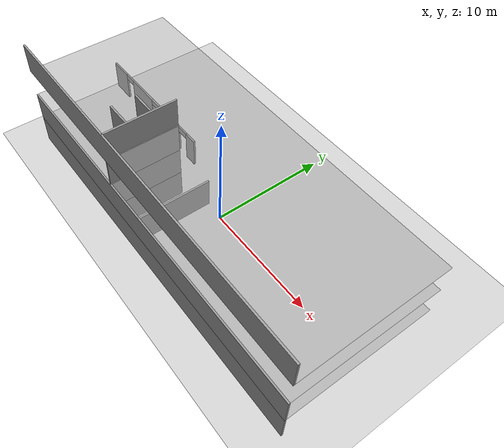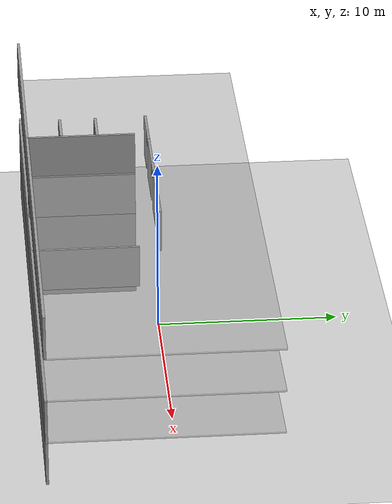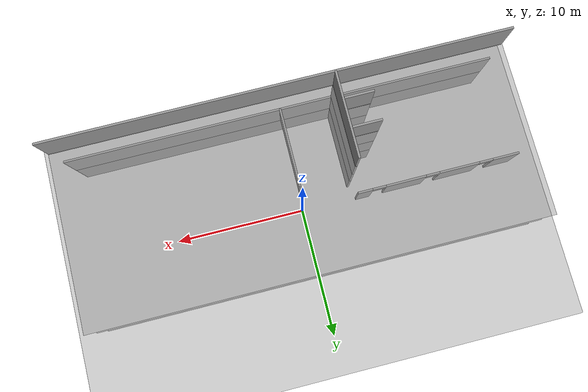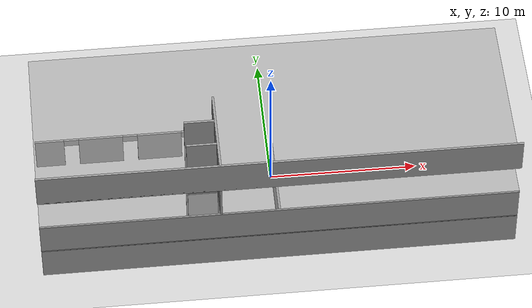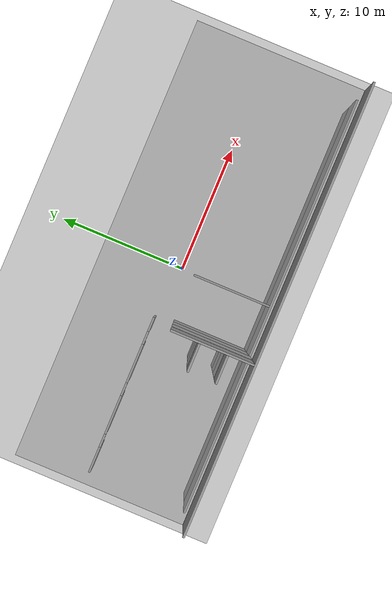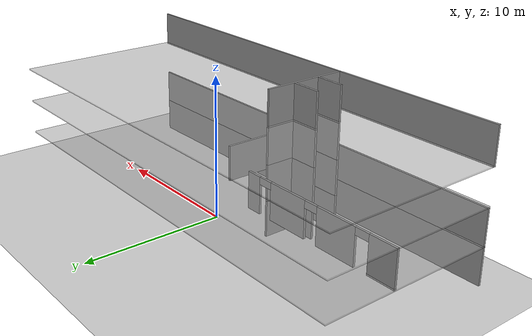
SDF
<sdf version="1.7">
 <world name="default">
  <model name="ground_plane">
   <static>1</static>
   <link name="link">
    <collision name="collision">
     <geometry><plane><normal>0 0 1</normal><size>100 100</size></plane></geometry>
     <surface>
      <contact><collide_bitmask>65535</collide_bitmask></contact>
      <friction><ode><mu>100</mu><mu2>50</mu2></ode></friction>
     </surface>
    </collision>
    <visual name="visual">
     <cast_shadows>0</cast_shadows>
     <geometry><plane><normal>0 0 1</normal><size>100 100</size></plane></geometry>
     <material>
      <script><uri>file://media/materials/scripts/gazebo.material</uri><name>Gazebo/Grey</name></script>
     </material>
    </visual>
   </link>
  </model>
  <model name="floor4plan_transp">
   <link name="Floor_0">
    <pose>0 0 2.5 0 -0 0</pose>
    <inertial>
     <mass>1</mass>
     <inertia><ixx>1</ixx><ixy>0</ixy><ixz>0</ixz><iyy>1</iyy><iyz>0</iyz><izz>1</izz></inertia>
    </inertial>
    <visual name="Floor_0_Visual">
     <pose>0 0 0.05 0 -0 0</pose>
     <geometry><box><size>32 12.5 0.1</size></box></geometry>
     <material>
      <script><uri>file://media/materials/scripts/gazebo.material</uri><name>Gazebo/Grey</name></script>
      <ambient>1 1 1 1</ambient>
      <shader type="pixel"><normal_map>__default__</normal_map></shader>
      <diffuse>0.7 0.7 0.7 1</diffuse>
      <specular>0.01 0.01 0.01 1</specular>
      <emissive>0 0 0 1</emissive>
     </material>
     <meta><layer>1</layer></meta>
     <transparency>0.5</transparency>
    </visual>
    <collision name="Floor_0_Collision">
     <pose>0 0 0.05 0 -0 0</pose>
     <geometry><box><size>32 12.5 0.1</size></box></geometry>
     <surface>
      <friction>
       <ode><mu>1</mu><mu2>1</mu2><fdir1>0 0 0</fdir1><slip1>0</slip1><slip2>0</slip2></ode>
       <torsional>
        <coefficient>1</coefficient>
        <patch_radius>0</patch_radius>
        <surface_radius>0</surface_radius>
        <use_patch_radius>1</use_patch_radius>
        <ode><slip>0</slip></ode>
       </torsional>
      </friction>
      <bounce><restitution_coefficient>0</restitution_coefficient><threshold>1e+06</threshold></bounce>
      <contact>
       <collide_without_contact>0</collide_without_contact>
       <collide_without_contact_bitmask>1</collide_without_contact_bitmask>
       <collide_bitmask>1</collide_bitmask>
       <ode>
        <soft_cfm>0</soft_cfm>
        <soft_erp>0.2</soft_erp>
        <kp>1e+13</kp>
        <kd>1</kd>
        <max_vel>0.01</max_vel>
        <min_depth>0</min_depth>
       </ode>
       <bullet>
        <split_impulse>1</split_impulse>
        <split_impulse_penetration_threshold>-0.01</split_impulse_penetration_threshold>
        <soft_cfm>0</soft_cfm>
        <soft_erp>0.2</soft_erp>
        <kp>1e+13</kp>
        <kd>1</kd>
       </bullet>
      </contact>
     </surface>
    </collision>
   </link>
   <link name="Floor_1">
    <pose>0 0 5 0 -0 0</pose>
    <inertial>
     <mass>1</mass>
     <inertia><ixx>1</ixx><ixy>0</ixy><ixz>0</ixz><iyy>1</iyy><iyz>0</iyz><izz>1</izz></inertia>
    </inertial>
    <visual name="Floor_1_Visual">
     <pose>0 0 0.05 0 -0 0</pose>
     <geometry><box><size>32 12.5 0.1</size></box></geometry>
     <material>
      <script><uri>file://media/materials/scripts/gazebo.material</uri><name>Gazebo/Grey</name></script>
      <ambient>1 1 1 1</ambient>
      <shader type="pixel"><normal_map>__default__</normal_map></shader>
      <diffuse>0.7 0.7 0.7 1</diffuse>
      <specular>0.01 0.01 0.01 1</specular>
      <emissive>0 0 0 1</emissive>
     </material>
     <meta><layer>2</layer></meta>
     <transparency>0.5</transparency>
    </visual>
    <collision name="Floor_1_Collision">
     <pose>0 0 0.05 0 -0 0</pose>
     <geometry><box><size>32 12.5 0.1</size></box></geometry>
     <surface>
      <friction>
       <ode><mu>1</mu><mu2>1</mu2><fdir1>0 0 0</fdir1><slip1>0</slip1><slip2>0</slip2></ode>
       <torsional>
        <coefficient>1</coefficient>
        <patch_radius>0</patch_radius>
        <surface_radius>0</surface_radius>
        <use_patch_radius>1</use_patch_radius>
        <ode><slip>0</slip></ode>
       </torsional>
      </friction>
      <bounce><restitution_coefficient>0</restitution_coefficient><threshold>1e+06</threshold></bounce>
      <contact>
       <collide_without_contact>0</collide_without_contact>
       <collide_without_contact_bitmask>1</collide_without_contact_bitmask>
       <collide_bitmask>1</collide_bitmask>
       <ode>
        <soft_cfm>0</soft_cfm>
        <soft_erp>0.2</soft_erp>
        <kp>1e+13</kp>
        <kd>1</kd>
        <max_vel>0.01</max_vel>
        <min_depth>0</min_depth>
       </ode>
       <bullet>
        <split_impulse>1</split_impulse>
        <split_impulse_penetration_threshold>-0.01</split_impulse_penetration_threshold>
        <soft_cfm>0</soft_cfm>
        <soft_erp>0.2</soft_erp>
        <kp>1e+13</kp>
        <kd>1</kd>
       </bullet>
      </contact>
     </surface>
    </collision>
   </link>
   <link name="Floor_2">
    <pose>0 0 7.5 0 -0 0</pose>
    <inertial>
     <mass>1</mass>
     <inertia><ixx>1</ixx><ixy>0</ixy><ixz>0</ixz><iyy>1</iyy><iyz>0</iyz><izz>1</izz></inertia>
    </inertial>
    <visual name="Floor_2_Visual">
     <pose>0 0 0.05 0 -0 0</pose>
     <geometry><box><size>32 12.5 0.1</size></box></geometry>
     <material>
      <script><uri>file://media/materials/scripts/gazebo.material</uri><name>Gazebo/Grey</name></script>
      <ambient>1 1 1 1</ambient>
      <shader type="pixel"><normal_map>__default__</normal_map></shader>
      <diffuse>0.7 0.7 0.7 1</diffuse>
      <specular>0.01 0.01 0.01 1</specular>
      <emissive>0 0 0 1</emissive>
     </material>
     <meta><layer>3</layer></meta>
     <transparency>0.5</transparency>
    </visual>
    <collision name="Floor_2_Collision">
     <pose>0 0 0.05 0 -0 0</pose>
     <geometry><box><size>32 12.5 0.1</size></box></geometry>
     <surface>
      <friction>
       <ode><mu>1</mu><mu2>1</mu2><fdir1>0 0 0</fdir1><slip1>0</slip1><slip2>0</slip2></ode>
       <torsional>
        <coefficient>1</coefficient>
        <patch_radius>0</patch_radius>
        <surface_radius>0</surface_radius>
        <use_patch_radius>1</use_patch_radius>
        <ode><slip>0</slip></ode>
       </torsional>
      </friction>
      <bounce><restitution_coefficient>0</restitution_coefficient><threshold>1e+06</threshold></bounce>
      <contact>
       <collide_without_contact>0</collide_without_contact>
       <collide_without_contact_bitmask>1</collide_without_contact_bitmask>
       <collide_bitmask>1</collide_bitmask>
       <ode>
        <soft_cfm>0</soft_cfm>
        <soft_erp>0.2</soft_erp>
        <kp>1e+13</kp>
        <kd>1</kd>
        <max_vel>0.01</max_vel>
        <min_depth>0</min_depth>
       </ode>
       <bullet>
        <split_impulse>1</split_impulse>
        <split_impulse_penetration_threshold>-0.01</split_impulse_penetration_threshold>
        <soft_cfm>0</soft_cfm>
        <soft_erp>0.2</soft_erp>
        <kp>1e+13</kp>
        <kd>1</kd>
       </bullet>
      </contact>
     </surface>
    </collision>
   </link>
   <link name="Wall_102">
    <pose>0 -6.175 7.5 0 -0 0</pose>
    <visual name="Wall_102_Visual">
     <pose>0 0 1.25 0 -0 0</pose>
     <geometry><box><size>32 0.15 2.5</size></box></geometry>
     <material>
      <script><uri>file://media/materials/scripts/gazebo.material</uri><name>Gazebo/Grey</name></script>
      <ambient>1 1 1 1</ambient>
      <shader type="pixel"/>
     </material>
     <meta><layer>3</layer></meta>
    </visual>
    <collision name="Wall_102_Collision">
     <pose>0 0 1.25 0 -0 0</pose>
     <geometry><box><size>32 0.15 2.5</size></box></geometry>
     <surface>
      <friction>
       <ode><mu>1</mu><mu2>1</mu2><fdir1>0 0 0</fdir1><slip1>0</slip1><slip2>0</slip2></ode>
       <torsional>
        <coefficient>1</coefficient>
        <patch_radius>0</patch_radius>
        <surface_radius>0</surface_radius>
        <use_patch_radius>1</use_patch_radius>
        <ode><slip>0</slip></ode>
       </torsional>
      </friction>
      <bounce><restitution_coefficient>0</restitution_coefficient><threshold>1e+06</threshold></bounce>
      <contact>
       <collide_without_contact>0</collide_without_contact>
       <collide_without_contact_bitmask>1</collide_without_contact_bitmask>
       <collide_bitmask>1</collide_bitmask>
       <ode>
        <soft_cfm>0</soft_cfm>
        <soft_erp>0.2</soft_erp>
        <kp>1e+13</kp>
        <kd>1</kd>
        <max_vel>0.01</max_vel>
        <min_depth>0</min_depth>
       </ode>
       <bullet>
        <split_impulse>1</split_impulse>
        <split_impulse_penetration_threshold>-0.01</split_impulse_penetration_threshold>
        <soft_cfm>0</soft_cfm>
        <soft_erp>0.2</soft_erp>
        <kp>1e+13</kp>
        <kd>1</kd>
       </bullet>
      </contact>
     </surface>
    </collision>
   </link>
   <link name="Wall_118">
    <pose>-3.93107 -3.18853 7.5 0 0 -1.5708</pose>
    <visual name="Wall_118_Visual">
     <pose>0 0 1.25 0 -0 0</pose>
     <geometry><box><size>6 0.15 2.5</size></box></geometry>
     <material>
      <script><uri>file://media/materials/scripts/gazebo.material</uri><name>Gazebo/Grey</name></script>
      <ambient>1 1 1 1</ambient>
      <shader type="pixel"/>
     </material>
     <meta><layer>3</layer></meta>
    </visual>
    <collision name="Wall_118_Collision">
     <pose>0 0 1.25 0 -0 0</pose>
     <geometry><box><size>6 0.15 2.5</size></box></geometry>
     <surface>
      <friction>
       <ode><mu>1</mu><mu2>1</mu2><fdir1>0 0 0</fdir1><slip1>0</slip1><slip2>0</slip2></ode>
       <torsional>
        <coefficient>1</coefficient>
        <patch_radius>0</patch_radius>
        <surface_radius>0</surface_radius>
        <use_patch_radius>1</use_patch_radius>
        <ode><slip>0</slip></ode>
       </torsional>
      </friction>
      <bounce><restitution_coefficient>0</restitution_coefficient><threshold>1e+06</threshold></bounce>
      <contact>
       <collide_without_contact>0</collide_without_contact>
       <collide_without_contact_bitmask>1</collide_without_contact_bitmask>
       <collide_bitmask>1</collide_bitmask>
       <ode>
        <soft_cfm>0</soft_cfm>
        <soft_erp>0.2</soft_erp>
        <kp>1e+13</kp>
        <kd>1</kd>
        <max_vel>0.01</max_vel>
        <min_depth>0</min_depth>
       </ode>
       <bullet>
        <split_impulse>1</split_impulse>
        <split_impulse_penetration_threshold>-0.01</split_impulse_penetration_threshold>
        <soft_cfm>0</soft_cfm>
        <soft_erp>0.2</soft_erp>
        <kp>1e+13</kp>
        <kd>1</kd>
       </bullet>
      </contact>
     </surface>
    </collision>
   </link>
   <link name="Wall_122">
    <pose>-5.01843 -2.27589 7.5 0 -0 0</pose>
    <visual name="Wall_122_Visual">
     <pose>0 0 1.25 0 -0 0</pose>
     <geometry><box><size>2 0.15 2.5</size></box></geometry>
     <material>
      <script><uri>file://media/materials/scripts/gazebo.material</uri><name>Gazebo/Grey</name></script>
      <ambient>1 1 1 1</ambient>
      <shader type="pixel"/>
     </material>
     <meta><layer>3</layer></meta>
    </visual>
    <collision name="Wall_122_Collision">
     <pose>0 0 1.25 0 -0 0</pose>
     <geometry><box><size>2 0.15 2.5</size></box></geometry>
     <surface>
      <friction>
       <ode><mu>1</mu><mu2>1</mu2><fdir1>0 0 0</fdir1><slip1>0</slip1><slip2>0</slip2></ode>
       <torsional>
        <coefficient>1</coefficient>
        <patch_radius>0</patch_radius>
        <surface_radius>0</surface_radius>
        <use_patch_radius>1</use_patch_radius>
        <ode><slip>0</slip></ode>
       </torsional>
      </friction>
      <bounce><restitution_coefficient>0</restitution_coefficient><threshold>1e+06</threshold></bounce>
      <contact>
       <collide_without_contact>0</collide_without_contact>
       <collide_without_contact_bitmask>1</collide_without_contact_bitmask>
       <collide_bitmask>1</collide_bitmask>
       <ode>
        <soft_cfm>0</soft_cfm>
        <soft_erp>0.2</soft_erp>
        <kp>1e+13</kp>
        <kd>1</kd>
        <max_vel>0.01</max_vel>
        <min_depth>0</min_depth>
       </ode>
       <bullet>
        <split_impulse>1</split_impulse>
        <split_impulse_penetration_threshold>-0.01</split_impulse_penetration_threshold>
        <soft_cfm>0</soft_cfm>
        <soft_erp>0.2</soft_erp>
        <kp>1e+13</kp>
        <kd>1</kd>
       </bullet>
      </contact>
     </surface>
    </collision>
   </link>
   <link name="Wall_123">
    <pose>-5.01843 -4.26513 7.5 0 -0 0</pose>
    <visual name="Wall_123_Visual">
     <pose>0 0 1.25 0 -0 0</pose>
     <geometry><box><size>2 0.15 2.5</size></box></geometry>
     <material>
      <script><uri>file://media/materials/scripts/gazebo.material</uri><name>Gazebo/Grey</name></script>
      <ambient>1 1 1 1</ambient>
      <shader type="pixel"/>
     </material>
     <meta><layer>3</layer></meta>
    </visual>
    <collision name="Wall_123_Collision">
     <pose>0 0 1.25 0 -0 0</pose>
     <geometry><box><size>2 0.15 2.5</size></box></geometry>
     <surface>
      <friction>
       <ode><mu>1</mu><mu2>1</mu2><fdir1>0 0 0</fdir1><slip1>0</slip1><slip2>0</slip2></ode>
       <torsional>
        <coefficient>1</coefficient>
        <patch_radius>0</patch_radius>
        <surface_radius>0</surface_radius>
        <use_patch_radius>1</use_patch_radius>
        <ode><slip>0</slip></ode>
       </torsional>
      </friction>
      <bounce><restitution_coefficient>0</restitution_coefficient><threshold>1e+06</threshold></bounce>
      <contact>
       <collide_without_contact>0</collide_without_contact>
       <collide_without_contact_bitmask>1</collide_without_contact_bitmask>
       <collide_bitmask>1</collide_bitmask>
       <ode>
        <soft_cfm>0</soft_cfm>
        <soft_erp>0.2</soft_erp>
        <kp>1e+13</kp>
        <kd>1</kd>
        <max_vel>0.01</max_vel>
        <min_depth>0</min_depth>
       </ode>
       <bullet>
        <split_impulse>1</split_impulse>
        <split_impulse_penetration_threshold>-0.01</split_impulse_penetration_threshold>
        <soft_cfm>0</soft_cfm>
        <soft_erp>0.2</soft_erp>
        <kp>1e+13</kp>
        <kd>1</kd>
       </bullet>
      </contact>
     </surface>
    </collision>
   </link>
   <link name="Wall_3">
    <pose>0 -6.175 0 0 -0 0</pose>
    <visual name="Wall_3_Visual">
     <pose>0 0 1.25 0 -0 0</pose>
     <geometry><box><size>32 0.15 2.5</size></box></geometry>
     <material>
      <script><uri>file://media/materials/scripts/gazebo.material</uri><name>Gazebo/Grey</name></script>
      <ambient>1 1 1 1</ambient>
      <shader type="pixel"/>
     </material>
     <meta><layer>0</layer></meta>
    </visual>
    <collision name="Wall_3_Collision">
     <pose>0 0 1.25 0 -0 0</pose>
     <geometry><box><size>32 0.15 2.5</size></box></geometry>
     <surface>
      <friction>
       <ode><mu>1</mu><mu2>1</mu2><fdir1>0 0 0</fdir1><slip1>0</slip1><slip2>0</slip2></ode>
       <torsional>
        <coefficient>1</coefficient>
        <patch_radius>0</patch_radius>
        <surface_radius>0</surface_radius>
        <use_patch_radius>1</use_patch_radius>
        <ode><slip>0</slip></ode>
       </torsional>
      </friction>
      <bounce><restitution_coefficient>0</restitution_coefficient><threshold>1e+06</threshold></bounce>
      <contact>
       <collide_without_contact>0</collide_without_contact>
       <collide_without_contact_bitmask>1</collide_without_contact_bitmask>
       <collide_bitmask>1</collide_bitmask>
       <ode>
        <soft_cfm>0</soft_cfm>
        <soft_erp>0.2</soft_erp>
        <kp>1e+13</kp>
        <kd>1</kd>
        <max_vel>0.01</max_vel>
        <min_depth>0</min_depth>
       </ode>
       <bullet>
        <split_impulse>1</split_impulse>
        <split_impulse_penetration_threshold>-0.01</split_impulse_penetration_threshold>
        <soft_cfm>0</soft_cfm>
        <soft_erp>0.2</soft_erp>
        <kp>1e+13</kp>
        <kd>1</kd>
       </bullet>
      </contact>
     </surface>
    </collision>
   </link>
   <link name="Wall_36">
    <pose>-3.93107 -3.18853 0 0 0 -1.5708</pose>
    <visual name="Wall_36_Visual">
     <pose>0 0 1.25 0 -0 0</pose>
     <geometry><box><size>6 0.15 2.5</size></box></geometry>
     <material>
      <script><uri>file://media/materials/scripts/gazebo.material</uri><name>Gazebo/Grey</name></script>
      <ambient>1 1 1 1</ambient>
      <shader type="pixel"/>
     </material>
     <meta><layer>0</layer></meta>
    </visual>
    <collision name="Wall_36_Collision">
     <pose>0 0 1.25 0 -0 0</pose>
     <geometry><box><size>6 0.15 2.5</size></box></geometry>
     <surface>
      <friction>
       <ode><mu>1</mu><mu2>1</mu2><fdir1>0 0 0</fdir1><slip1>0</slip1><slip2>0</slip2></ode>
       <torsional>
        <coefficient>1</coefficient>
        <patch_radius>0</patch_radius>
        <surface_radius>0</surface_radius>
        <use_patch_radius>1</use_patch_radius>
        <ode><slip>0</slip></ode>
       </torsional>
      </friction>
      <bounce><restitution_coefficient>0</restitution_coefficient><threshold>1e+06</threshold></bounce>
      <contact>
       <collide_without_contact>0</collide_without_contact>
       <collide_without_contact_bitmask>1</collide_without_contact_bitmask>
       <collide_bitmask>1</collide_bitmask>
       <ode>
        <soft_cfm>0</soft_cfm>
        <soft_erp>0.2</soft_erp>
        <kp>1e+13</kp>
        <kd>1</kd>
        <max_vel>0.01</max_vel>
        <min_depth>0</min_depth>
       </ode>
       <bullet>
        <split_impulse>1</split_impulse>
        <split_impulse_penetration_threshold>-0.01</split_impulse_penetration_threshold>
        <soft_cfm>0</soft_cfm>
        <soft_erp>0.2</soft_erp>
        <kp>1e+13</kp>
        <kd>1</kd>
       </bullet>
      </contact>
     </surface>
    </collision>
   </link>
   <link name="Wall_44">
    <pose>-5.01843 -2.27589 0 0 -0 0</pose>
    <visual name="Wall_44_Visual">
     <pose>0 0 1.25 0 -0 0</pose>
     <geometry><box><size>2 0.15 2.5</size></box></geometry>
     <material>
      <script><uri>file://media/materials/scripts/gazebo.material</uri><name>Gazebo/Grey</name></script>
      <ambient>1 1 1 1</ambient>
      <shader type="pixel"/>
     </material>
     <meta><layer>0</layer></meta>
    </visual>
    <collision name="Wall_44_Collision">
     <pose>0 0 1.25 0 -0 0</pose>
     <geometry><box><size>2 0.15 2.5</size></box></geometry>
     <surface>
      <friction>
       <ode><mu>1</mu><mu2>1</mu2><fdir1>0 0 0</fdir1><slip1>0</slip1><slip2>0</slip2></ode>
       <torsional>
        <coefficient>1</coefficient>
        <patch_radius>0</patch_radius>
        <surface_radius>0</surface_radius>
        <use_patch_radius>1</use_patch_radius>
        <ode><slip>0</slip></ode>
       </torsional>
      </friction>
      <bounce><restitution_coefficient>0</restitution_coefficient><threshold>1e+06</threshold></bounce>
      <contact>
       <collide_without_contact>0</collide_without_contact>
       <collide_without_contact_bitmask>1</collide_without_contact_bitmask>
       <collide_bitmask>1</collide_bitmask>
       <ode>
        <soft_cfm>0</soft_cfm>
        <soft_erp>0.2</soft_erp>
        <kp>1e+13</kp>
        <kd>1</kd>
        <max_vel>0.01</max_vel>
        <min_depth>0</min_depth>
       </ode>
       <bullet>
        <split_impulse>1</split_impulse>
        <split_impulse_penetration_threshold>-0.01</split_impulse_penetration_threshold>
        <soft_cfm>0</soft_cfm>
        <soft_erp>0.2</soft_erp>
        <kp>1e+13</kp>
        <kd>1</kd>
       </bullet>
      </contact>
     </surface>
    </collision>
   </link>
   <link name="Wall_46">
    <pose>-5.01843 -4.26513 0 0 -0 0</pose>
    <visual name="Wall_46_Visual">
     <pose>0 0 1.25 0 -0 0</pose>
     <geometry><box><size>2 0.15 2.5</size></box></geometry>
     <material>
      <script><uri>file://media/materials/scripts/gazebo.material</uri><name>Gazebo/Grey</name></script>
      <ambient>1 1 1 1</ambient>
      <shader type="pixel"/>
     </material>
     <meta><layer>0</layer></meta>
    </visual>
    <collision name="Wall_46_Collision">
     <pose>0 0 1.25 0 -0 0</pose>
     <geometry><box><size>2 0.15 2.5</size></box></geometry>
     <surface>
      <friction>
       <ode><mu>1</mu><mu2>1</mu2><fdir1>0 0 0</fdir1><slip1>0</slip1><slip2>0</slip2></ode>
       <torsional>
        <coefficient>1</coefficient>
        <patch_radius>0</patch_radius>
        <surface_radius>0</surface_radius>
        <use_patch_radius>1</use_patch_radius>
        <ode><slip>0</slip></ode>
       </torsional>
      </friction>
      <bounce><restitution_coefficient>0</restitution_coefficient><threshold>1e+06</threshold></bounce>
      <contact>
       <collide_without_contact>0</collide_without_contact>
       <collide_without_contact_bitmask>1</collide_without_contact_bitmask>
       <collide_bitmask>1</collide_bitmask>
       <ode>
        <soft_cfm>0</soft_cfm>
        <soft_erp>0.2</soft_erp>
        <kp>1e+13</kp>
        <kd>1</kd>
        <max_vel>0.01</max_vel>
        <min_depth>0</min_depth>
       </ode>
       <bullet>
        <split_impulse>1</split_impulse>
        <split_impulse_penetration_threshold>-0.01</split_impulse_penetration_threshold>
        <soft_cfm>0</soft_cfm>
        <soft_erp>0.2</soft_erp>
        <kp>1e+13</kp>
        <kd>1</kd>
       </bullet>
      </contact>
     </surface>
    </collision>
   </link>
   <link name="Wall_52">
    <pose>0 -6.175 2.5 0 -0 0</pose>
    <visual name="Wall_52_Visual">
     <pose>0 0 1.25 0 -0 0</pose>
     <geometry><box><size>32 0.15 2.5</size></box></geometry>
     <material>
      <script><uri>file://media/materials/scripts/gazebo.material</uri><name>Gazebo/Grey</name></script>
      <ambient>1 1 1 1</ambient>
      <shader type="pixel"/>
     </material>
     <meta><layer>1</layer></meta>
    </visual>
    <collision name="Wall_52_Collision">
     <pose>0 0 1.25 0 -0 0</pose>
     <geometry><box><size>32 0.15 2.5</size></box></geometry>
     <surface>
      <friction>
       <ode><mu>1</mu><mu2>1</mu2><fdir1>0 0 0</fdir1><slip1>0</slip1><slip2>0</slip2></ode>
       <torsional>
        <coefficient>1</coefficient>
        <patch_radius>0</patch_radius>
        <surface_radius>0</surface_radius>
        <use_patch_radius>1</use_patch_radius>
        <ode><slip>0</slip></ode>
       </torsional>
      </friction>
      <bounce><restitution_coefficient>0</restitution_coefficient><threshold>1e+06</threshold></bounce>
      <contact>
       <collide_without_contact>0</collide_without_contact>
       <collide_without_contact_bitmask>1</collide_without_contact_bitmask>
       <collide_bitmask>1</collide_bitmask>
       <ode>
        <soft_cfm>0</soft_cfm>
        <soft_erp>0.2</soft_erp>
        <kp>1e+13</kp>
        <kd>1</kd>
        <max_vel>0.01</max_vel>
        <min_depth>0</min_depth>
       </ode>
       <bullet>
        <split_impulse>1</split_impulse>
        <split_impulse_penetration_threshold>-0.01</split_impulse_penetration_threshold>
        <soft_cfm>0</soft_cfm>
        <soft_erp>0.2</soft_erp>
        <kp>1e+13</kp>
        <kd>1</kd>
       </bullet>
      </contact>
     </surface>
    </collision>
   </link>
   <link name="Wall_54">
    <pose>-9.94146 1.21683 2.5 0 -0 0</pose>
    <visual name="Wall_54_Visual_0">
     <pose>-5.02127 0 1.25 0 -0 0</pose>
     <geometry><box><size>1.95745 0.15 2.5</size></box></geometry>
     <material>
      <script><uri>file://media/materials/scripts/gazebo.material</uri><name>Gazebo/Grey</name></script>
      <ambient>1 1 1 1</ambient>
      <shader type="pixel"/>
     </material>
     <meta><layer>1</layer></meta>
    </visual>
    <visual name="Wall_54_Visual_1">
     <pose>-1.55332 0 1.25 0 -0 0</pose>
     <geometry><box><size>2.97846 0.15 2.5</size></box></geometry>
     <material>
      <script><uri>file://media/materials/scripts/gazebo.material</uri><name>Gazebo/Grey</name></script>
      <ambient>1 1 1 1</ambient>
      <shader type="pixel"/>
     </material>
     <meta><layer>1</layer></meta>
    </visual>
    <visual name="Wall_54_Visual_2">
     <pose>2.42515 0 1.25 0 -0 0</pose>
     <geometry><box><size>2.97846 0.15 2.5</size></box></geometry>
     <material>
      <script><uri>file://media/materials/scripts/gazebo.material</uri><name>Gazebo/Grey</name></script>
      <ambient>1 1 1 1</ambient>
      <shader type="pixel"/>
     </material>
     <meta><layer>1</layer></meta>
    </visual>
    <visual name="Wall_54_Visual_3">
     <pose>5.45719 0 1.25 0 -0 0</pose>
     <geometry><box><size>1.08562 0.15 2.5</size></box></geometry>
     <material>
      <script><uri>file://media/materials/scripts/gazebo.material</uri><name>Gazebo/Grey</name></script>
      <ambient>1 1 1 1</ambient>
      <shader type="pixel"/>
     </material>
     <meta><layer>1</layer></meta>
    </visual>
    <visual name="Wall_54_Visual_4">
     <pose>-3.54255 0 2.25 0 -0 0</pose>
     <geometry><box><size>1 0.15 0.5</size></box></geometry>
     <material>
      <script><uri>file://media/materials/scripts/gazebo.material</uri><name>Gazebo/Grey</name></script>
      <ambient>1 1 1 1</ambient>
      <shader type="pixel"/>
     </material>
     <meta><layer>1</layer></meta>
    </visual>
    <visual name="Wall_54_Visual_5">
     <pose>0.435917 0 2.25 0 -0 0</pose>
     <geometry><box><size>1 0.15 0.5</size></box></geometry>
     <material>
      <script><uri>file://media/materials/scripts/gazebo.material</uri><name>Gazebo/Grey</name></script>
      <ambient>1 1 1 1</ambient>
      <shader type="pixel"/>
     </material>
     <meta><layer>1</layer></meta>
    </visual>
    <visual name="Wall_54_Visual_6">
     <pose>4.41438 0 2.25 0 -0 0</pose>
     <geometry><box><size>1 0.15 0.5</size></box></geometry>
     <material>
      <script><uri>file://media/materials/scripts/gazebo.material</uri><name>Gazebo/Grey</name></script>
      <ambient>1 1 1 1</ambient>
      <shader type="pixel"/>
     </material>
     <meta><layer>1</layer></meta>
    </visual>
    <collision name="Wall_54_Collision_0">
     <pose>-5.02127 0 1.25 0 -0 0</pose>
     <geometry><box><size>1.95745 0.15 2.5</size></box></geometry>
     <surface>
      <friction>
       <ode><mu>1</mu><mu2>1</mu2><fdir1>0 0 0</fdir1><slip1>0</slip1><slip2>0</slip2></ode>
       <torsional>
        <coefficient>1</coefficient>
        <patch_radius>0</patch_radius>
        <surface_radius>0</surface_radius>
        <use_patch_radius>1</use_patch_radius>
        <ode><slip>0</slip></ode>
       </torsional>
      </friction>
      <bounce><restitution_coefficient>0</restitution_coefficient><threshold>1e+06</threshold></bounce>
      <contact>
       <collide_without_contact>0</collide_without_contact>
       <collide_without_contact_bitmask>1</collide_without_contact_bitmask>
       <collide_bitmask>1</collide_bitmask>
       <ode>
        <soft_cfm>0</soft_cfm>
        <soft_erp>0.2</soft_erp>
        <kp>1e+13</kp>
        <kd>1</kd>
        <max_vel>0.01</max_vel>
        <min_depth>0</min_depth>
       </ode>
       <bullet>
        <split_impulse>1</split_impulse>
        <split_impulse_penetration_threshold>-0.01</split_impulse_penetration_threshold>
        <soft_cfm>0</soft_cfm>
        <soft_erp>0.2</soft_erp>
        <kp>1e+13</kp>
        <kd>1</kd>
       </bullet>
      </contact>
     </surface>
    </collision>
    <collision name="Wall_54_Collision_1">
     <pose>-1.55332 0 1.25 0 -0 0</pose>
     <geometry><box><size>2.97846 0.15 2.5</size></box></geometry>
     <surface>
      <friction>
       <ode><mu>1</mu><mu2>1</mu2><fdir1>0 0 0</fdir1><slip1>0</slip1><slip2>0</slip2></ode>
       <torsional>
        <coefficient>1</coefficient>
        <patch_radius>0</patch_radius>
        <surface_radius>0</surface_radius>
        <use_patch_radius>1</use_patch_radius>
        <ode><slip>0</slip></ode>
       </torsional>
      </friction>
      <bounce><restitution_coefficient>0</restitution_coefficient><threshold>1e+06</threshold></bounce>
      <contact>
       <collide_without_contact>0</collide_without_contact>
       <collide_without_contact_bitmask>1</collide_without_contact_bitmask>
       <collide_bitmask>1</collide_bitmask>
       <ode>
        <soft_cfm>0</soft_cfm>
        <soft_erp>0.2</soft_erp>
        <kp>1e+13</kp>
        <kd>1</kd>
        <max_vel>0.01</max_vel>
        <min_depth>0</min_depth>
       </ode>
       <bullet>
        <split_impulse>1</split_impulse>
        <split_impulse_penetration_threshold>-0.01</split_impulse_penetration_threshold>
        <soft_cfm>0</soft_cfm>
        <soft_erp>0.2</soft_erp>
        <kp>1e+13</kp>
        <kd>1</kd>
       </bullet>
      </contact>
     </surface>
    </collision>
    <collision name="Wall_54_Collision_2">
     <pose>2.42515 0 1.25 0 -0 0</pose>
     <geometry><box><size>2.97846 0.15 2.5</size></box></geometry>
     <surface>
      <friction>
       <ode><mu>1</mu><mu2>1</mu2><fdir1>0 0 0</fdir1><slip1>0</slip1><slip2>0</slip2></ode>
       <torsional>
        <coefficient>1</coefficient>
        <patch_radius>0</patch_radius>
        <surface_radius>0</surface_radius>
        <use_patch_radius>1</use_patch_radius>
        <ode><slip>0</slip></ode>
       </torsional>
      </friction>
      <bounce><restitution_coefficient>0</restitution_coefficient><threshold>1e+06</threshold></bounce>
      <contact>
       <collide_without_contact>0</collide_without_contact>
       <collide_without_contact_bitmask>1</collide_without_contact_bitmask>
       <collide_bitmask>1</collide_bitmask>
       <ode>
        <soft_cfm>0</soft_cfm>
        <soft_erp>0.2</soft_erp>
        <kp>1e+13</kp>
        <kd>1</kd>
        <max_vel>0.01</max_vel>
        <min_depth>0</min_depth>
       </ode>
       <bullet>
        <split_impulse>1</split_impulse>
        <split_impulse_penetration_threshold>-0.01</split_impulse_penetration_threshold>
        <soft_cfm>0</soft_cfm>
        <soft_erp>0.2</soft_erp>
        <kp>1e+13</kp>
        <kd>1</kd>
       </bullet>
      </contact>
     </surface>
    </collision>
    <collision name="Wall_54_Collision_3">
     <pose>5.45719 0 1.25 0 -0 0</pose>
     <geometry><box><size>1.08562 0.15 2.5</size></box></geometry>
     <surface>
      <friction>
       <ode><mu>1</mu><mu2>1</mu2><fdir1>0 0 0</fdir1><slip1>0</slip1><slip2>0</slip2></ode>
       <torsional>
        <coefficient>1</coefficient>
        <patch_radius>0</patch_radius>
        <surface_radius>0</surface_radius>
        <use_patch_radius>1</use_patch_radius>
        <ode><slip>0</slip></ode>
       </torsional>
      </friction>
      <bounce><restitution_coefficient>0</restitution_coefficient><threshold>1e+06</threshold></bounce>
      <contact>
       <collide_without_contact>0</collide_without_contact>
       <collide_without_contact_bitmask>1</collide_without_contact_bitmask>
       <collide_bitmask>1</collide_bitmask>
       <ode>
        <soft_cfm>0</soft_cfm>
        <soft_erp>0.2</soft_erp>
        <kp>1e+13</kp>
        <kd>1</kd>
        <max_vel>0.01</max_vel>
        <min_depth>0</min_depth>
       </ode>
       <bullet>
        <split_impulse>1</split_impulse>
        <split_impulse_penetration_threshold>-0.01</split_impulse_penetration_threshold>
        <soft_cfm>0</soft_cfm>
        <soft_erp>0.2</soft_erp>
        <kp>1e+13</kp>
        <kd>1</kd>
       </bullet>
      </contact>
     </surface>
    </collision>
    <collision name="Wall_54_Collision_4">
     <pose>-3.54255 0 2.25 0 -0 0</pose>
     <geometry><box><size>1 0.15 0.5</size></box></geometry>
     <surface>
      <friction>
       <ode><mu>1</mu><mu2>1</mu2><fdir1>0 0 0</fdir1><slip1>0</slip1><slip2>0</slip2></ode>
       <torsional>
        <coefficient>1</coefficient>
        <patch_radius>0</patch_radius>
        <surface_radius>0</surface_radius>
        <use_patch_radius>1</use_patch_radius>
        <ode><slip>0</slip></ode>
       </torsional>
      </friction>
      <bounce><restitution_coefficient>0</restitution_coefficient><threshold>1e+06</threshold></bounce>
      <contact>
       <collide_without_contact>0</collide_without_contact>
       <collide_without_contact_bitmask>1</collide_without_contact_bitmask>
       <collide_bitmask>1</collide_bitmask>
       <ode>
        <soft_cfm>0</soft_cfm>
        <soft_erp>0.2</soft_erp>
        <kp>1e+13</kp>
        <kd>1</kd>
        <max_vel>0.01</max_vel>
        <min_depth>0</min_depth>
       </ode>
       <bullet>
        <split_impulse>1</split_impulse>
        <split_impulse_penetration_threshold>-0.01</split_impulse_penetration_threshold>
        <soft_cfm>0</soft_cfm>
        <soft_erp>0.2</soft_erp>
        <kp>1e+13</kp>
        <kd>1</kd>
       </bullet>
      </contact>
     </surface>
    </collision>
    <collision name="Wall_54_Collision_5">
     <pose>0.435917 0 2.25 0 -0 0</pose>
     <geometry><box><size>1 0.15 0.5</size></box></geometry>
     <surface>
      <friction>
       <ode><mu>1</mu><mu2>1</mu2><fdir1>0 0 0</fdir1><slip1>0</slip1><slip2>0</slip2></ode>
       <torsional>
        <coefficient>1</coefficient>
        <patch_radius>0</patch_radius>
        <surface_radius>0</surface_radius>
        <use_patch_radius>1</use_patch_radius>
        <ode><slip>0</slip></ode>
       </torsional>
      </friction>
      <bounce><restitution_coefficient>0</restitution_coefficient><threshold>1e+06</threshold></bounce>
      <contact>
       <collide_without_contact>0</collide_without_contact>
       <collide_without_contact_bitmask>1</collide_without_contact_bitmask>
       <collide_bitmask>1</collide_bitmask>
       <ode>
        <soft_cfm>0</soft_cfm>
        <soft_erp>0.2</soft_erp>
        <kp>1e+13</kp>
        <kd>1</kd>
        <max_vel>0.01</max_vel>
        <min_depth>0</min_depth>
       </ode>
       <bullet>
        <split_impulse>1</split_impulse>
        <split_impulse_penetration_threshold>-0.01</split_impulse_penetration_threshold>
        <soft_cfm>0</soft_cfm>
        <soft_erp>0.2</soft_erp>
        <kp>1e+13</kp>
        <kd>1</kd>
       </bullet>
      </contact>
     </surface>
    </collision>
    <collision name="Wall_54_Collision_6">
     <pose>4.41438 0 2.25 0 -0 0</pose>
     <geometry><box><size>1 0.15 0.5</size></box></geometry>
     <surface>
      <friction>
       <ode><mu>1</mu><mu2>1</mu2><fdir1>0 0 0</fdir1><slip1>0</slip1><slip2>0</slip2></ode>
       <torsional>
        <coefficient>1</coefficient>
        <patch_radius>0</patch_radius>
        <surface_radius>0</surface_radius>
        <use_patch_radius>1</use_patch_radius>
        <ode><slip>0</slip></ode>
       </torsional>
      </friction>
      <bounce><restitution_coefficient>0</restitution_coefficient><threshold>1e+06</threshold></bounce>
      <contact>
       <collide_without_contact>0</collide_without_contact>
       <collide_without_contact_bitmask>1</collide_without_contact_bitmask>
       <collide_bitmask>1</collide_bitmask>
       <ode>
        <soft_cfm>0</soft_cfm>
        <soft_erp>0.2</soft_erp>
        <kp>1e+13</kp>
        <kd>1</kd>
        <max_vel>0.01</max_vel>
        <min_depth>0</min_depth>
       </ode>
       <bullet>
        <split_impulse>1</split_impulse>
        <split_impulse_penetration_threshold>-0.01</split_impulse_penetration_threshold>
        <soft_cfm>0</soft_cfm>
        <soft_erp>0.2</soft_erp>
        <kp>1e+13</kp>
        <kd>1</kd>
       </bullet>
      </contact>
     </surface>
    </collision>
   </link>
   <link name="Wall_68">
    <pose>-3.93107 -3.18853 2.5 0 0 -1.5708</pose>
    <visual name="Wall_68_Visual">
     <pose>0 0 1.25 0 -0 0</pose>
     <geometry><box><size>6 0.15 2.5</size></box></geometry>
     <material>
      <script><uri>file://media/materials/scripts/gazebo.material</uri><name>Gazebo/Grey</name></script>
      <ambient>1 1 1 1</ambient>
      <shader type="pixel"/>
     </material>
     <meta><layer>1</layer></meta>
    </visual>
    <collision name="Wall_68_Collision">
     <pose>0 0 1.25 0 -0 0</pose>
     <geometry><box><size>6 0.15 2.5</size></box></geometry>
     <surface>
      <friction>
       <ode><mu>1</mu><mu2>1</mu2><fdir1>0 0 0</fdir1><slip1>0</slip1><slip2>0</slip2></ode>
       <torsional>
        <coefficient>1</coefficient>
        <patch_radius>0</patch_radius>
        <surface_radius>0</surface_radius>
        <use_patch_radius>1</use_patch_radius>
        <ode><slip>0</slip></ode>
       </torsional>
      </friction>
      <bounce><restitution_coefficient>0</restitution_coefficient><threshold>1e+06</threshold></bounce>
      <contact>
       <collide_without_contact>0</collide_without_contact>
       <collide_without_contact_bitmask>1</collide_without_contact_bitmask>
       <collide_bitmask>1</collide_bitmask>
       <ode>
        <soft_cfm>0</soft_cfm>
        <soft_erp>0.2</soft_erp>
        <kp>1e+13</kp>
        <kd>1</kd>
        <max_vel>0.01</max_vel>
        <min_depth>0</min_depth>
       </ode>
       <bullet>
        <split_impulse>1</split_impulse>
        <split_impulse_penetration_threshold>-0.01</split_impulse_penetration_threshold>
        <soft_cfm>0</soft_cfm>
        <soft_erp>0.2</soft_erp>
        <kp>1e+13</kp>
        <kd>1</kd>
       </bullet>
      </contact>
     </surface>
    </collision>
   </link>
   <link name="Wall_69">
    <pose>-0.045127 -3.23479 2.5 0 0 -1.5708</pose>
    <visual name="Wall_69_Visual">
     <pose>0 0 1.25 0 -0 0</pose>
     <geometry><box><size>6 0.15 2.5</size></box></geometry>
     <material>
      <script><uri>file://media/materials/scripts/gazebo.material</uri><name>Gazebo/Grey</name></script>
      <ambient>1 1 1 1</ambient>
      <shader type="pixel"/>
     </material>
     <meta><layer>1</layer></meta>
    </visual>
    <collision name="Wall_69_Collision">
     <pose>0 0 1.25 0 -0 0</pose>
     <geometry><box><size>6 0.15 2.5</size></box></geometry>
     <surface>
      <friction>
       <ode><mu>1</mu><mu2>1</mu2><fdir1>0 0 0</fdir1><slip1>0</slip1><slip2>0</slip2></ode>
       <torsional>
        <coefficient>1</coefficient>
        <patch_radius>0</patch_radius>
        <surface_radius>0</surface_radius>
        <use_patch_radius>1</use_patch_radius>
        <ode><slip>0</slip></ode>
       </torsional>
      </friction>
      <bounce><restitution_coefficient>0</restitution_coefficient><threshold>1e+06</threshold></bounce>
      <contact>
       <collide_without_contact>0</collide_without_contact>
       <collide_without_contact_bitmask>1</collide_without_contact_bitmask>
       <collide_bitmask>1</collide_bitmask>
       <ode>
        <soft_cfm>0</soft_cfm>
        <soft_erp>0.2</soft_erp>
        <kp>1e+13</kp>
        <kd>1</kd>
        <max_vel>0.01</max_vel>
        <min_depth>0</min_depth>
       </ode>
       <bullet>
        <split_impulse>1</split_impulse>
        <split_impulse_penetration_threshold>-0.01</split_impulse_penetration_threshold>
        <soft_cfm>0</soft_cfm>
        <soft_erp>0.2</soft_erp>
        <kp>1e+13</kp>
        <kd>1</kd>
       </bullet>
      </contact>
     </surface>
    </collision>
   </link>
   <link name="Wall_72">
    <pose>-5.01843 -2.27589 2.5 0 -0 0</pose>
    <visual name="Wall_72_Visual">
     <pose>0 0 1.25 0 -0 0</pose>
     <geometry><box><size>2 0.15 2.5</size></box></geometry>
     <material>
      <script><uri>file://media/materials/scripts/gazebo.material</uri><name>Gazebo/Grey</name></script>
      <ambient>1 1 1 1</ambient>
      <shader type="pixel"/>
     </material>
     <meta><layer>1</layer></meta>
    </visual>
    <collision name="Wall_72_Collision">
     <pose>0 0 1.25 0 -0 0</pose>
     <geometry><box><size>2 0.15 2.5</size></box></geometry>
     <surface>
      <friction>
       <ode><mu>1</mu><mu2>1</mu2><fdir1>0 0 0</fdir1><slip1>0</slip1><slip2>0</slip2></ode>
       <torsional>
        <coefficient>1</coefficient>
        <patch_radius>0</patch_radius>
        <surface_radius>0</surface_radius>
        <use_patch_radius>1</use_patch_radius>
        <ode><slip>0</slip></ode>
       </torsional>
      </friction>
      <bounce><restitution_coefficient>0</restitution_coefficient><threshold>1e+06</threshold></bounce>
      <contact>
       <collide_without_contact>0</collide_without_contact>
       <collide_without_contact_bitmask>1</collide_without_contact_bitmask>
       <collide_bitmask>1</collide_bitmask>
       <ode>
        <soft_cfm>0</soft_cfm>
        <soft_erp>0.2</soft_erp>
        <kp>1e+13</kp>
        <kd>1</kd>
        <max_vel>0.01</max_vel>
        <min_depth>0</min_depth>
       </ode>
       <bullet>
        <split_impulse>1</split_impulse>
        <split_impulse_penetration_threshold>-0.01</split_impulse_penetration_threshold>
        <soft_cfm>0</soft_cfm>
        <soft_erp>0.2</soft_erp>
        <kp>1e+13</kp>
        <kd>1</kd>
       </bullet>
      </contact>
     </surface>
    </collision>
   </link>
   <link name="Wall_73">
    <pose>-5.01843 -4.26513 2.5 0 -0 0</pose>
    <visual name="Wall_73_Visual">
     <pose>0 0 1.25 0 -0 0</pose>
     <geometry><box><size>2 0.15 2.5</size></box></geometry>
     <material>
      <script><uri>file://media/materials/scripts/gazebo.material</uri><name>Gazebo/Grey</name></script>
      <ambient>1 1 1 1</ambient>
      <shader type="pixel"/>
     </material>
     <meta><layer>1</layer></meta>
    </visual>
    <collision name="Wall_73_Collision">
     <pose>0 0 1.25 0 -0 0</pose>
     <geometry><box><size>2 0.15 2.5</size></box></geometry>
     <surface>
      <friction>
       <ode><mu>1</mu><mu2>1</mu2><fdir1>0 0 0</fdir1><slip1>0</slip1><slip2>0</slip2></ode>
       <torsional>
        <coefficient>1</coefficient>
        <patch_radius>0</patch_radius>
        <surface_radius>0</surface_radius>
        <use_patch_radius>1</use_patch_radius>
        <ode><slip>0</slip></ode>
       </torsional>
      </friction>
      <bounce><restitution_coefficient>0</restitution_coefficient><threshold>1e+06</threshold></bounce>
      <contact>
       <collide_without_contact>0</collide_without_contact>
       <collide_without_contact_bitmask>1</collide_without_contact_bitmask>
       <collide_bitmask>1</collide_bitmask>
       <ode>
        <soft_cfm>0</soft_cfm>
        <soft_erp>0.2</soft_erp>
        <kp>1e+13</kp>
        <kd>1</kd>
        <max_vel>0.01</max_vel>
        <min_depth>0</min_depth>
       </ode>
       <bullet>
        <split_impulse>1</split_impulse>
        <split_impulse_penetration_threshold>-0.01</split_impulse_penetration_threshold>
        <soft_cfm>0</soft_cfm>
        <soft_erp>0.2</soft_erp>
        <kp>1e+13</kp>
        <kd>1</kd>
       </bullet>
      </contact>
     </surface>
    </collision>
   </link>
   <link name="Wall_93">
    <pose>-3.93107 -3.18853 5 0 0 -1.5708</pose>
    <visual name="Wall_93_Visual">
     <pose>0 0 1.25 0 -0 0</pose>
     <geometry><box><size>6 0.15 2.5</size></box></geometry>
     <material>
      <script><uri>file://media/materials/scripts/gazebo.material</uri><name>Gazebo/Grey</name></script>
      <ambient>1 1 1 1</ambient>
      <shader type="pixel"/>
     </material>
     <meta><layer>2</layer></meta>
    </visual>
    <collision name="Wall_93_Collision">
     <pose>0 0 1.25 0 -0 0</pose>
     <geometry><box><size>6 0.15 2.5</size></box></geometry>
     <surface>
      <friction>
       <ode><mu>1</mu><mu2>1</mu2><fdir1>0 0 0</fdir1><slip1>0</slip1><slip2>0</slip2></ode>
       <torsional>
        <coefficient>1</coefficient>
        <patch_radius>0</patch_radius>
        <surface_radius>0</surface_radius>
        <use_patch_radius>1</use_patch_radius>
        <ode><slip>0</slip></ode>
       </torsional>
      </friction>
      <bounce><restitution_coefficient>0</restitution_coefficient><threshold>1e+06</threshold></bounce>
      <contact>
       <collide_without_contact>0</collide_without_contact>
       <collide_without_contact_bitmask>1</collide_without_contact_bitmask>
       <collide_bitmask>1</collide_bitmask>
       <ode>
        <soft_cfm>0</soft_cfm>
        <soft_erp>0.2</soft_erp>
        <kp>1e+13</kp>
        <kd>1</kd>
        <max_vel>0.01</max_vel>
        <min_depth>0</min_depth>
       </ode>
       <bullet>
        <split_impulse>1</split_impulse>
        <split_impulse_penetration_threshold>-0.01</split_impulse_penetration_threshold>
        <soft_cfm>0</soft_cfm>
        <soft_erp>0.2</soft_erp>
        <kp>1e+13</kp>
        <kd>1</kd>
       </bullet>
      </contact>
     </surface>
    </collision>
   </link>
   <link name="Wall_97">
    <pose>-5.01843 -2.27589 5 0 -0 0</pose>
    <visual name="Wall_97_Visual">
     <pose>0 0 1.25 0 -0 0</pose>
     <geometry><box><size>2 0.15 2.5</size></box></geometry>
     <material>
      <script><uri>file://media/materials/scripts/gazebo.material</uri><name>Gazebo/Grey</name></script>
      <ambient>1 1 1 1</ambient>
      <shader type="pixel"/>
     </material>
     <meta><layer>2</layer></meta>
    </visual>
    <collision name="Wall_97_Collision">
     <pose>0 0 1.25 0 -0 0</pose>
     <geometry><box><size>2 0.15 2.5</size></box></geometry>
     <surface>
      <friction>
       <ode><mu>1</mu><mu2>1</mu2><fdir1>0 0 0</fdir1><slip1>0</slip1><slip2>0</slip2></ode>
       <torsional>
        <coefficient>1</coefficient>
        <patch_radius>0</patch_radius>
        <surface_radius>0</surface_radius>
        <use_patch_radius>1</use_patch_radius>
        <ode><slip>0</slip></ode>
       </torsional>
      </friction>
      <bounce><restitution_coefficient>0</restitution_coefficient><threshold>1e+06</threshold></bounce>
      <contact>
       <collide_without_contact>0</collide_without_contact>
       <collide_without_contact_bitmask>1</collide_without_contact_bitmask>
       <collide_bitmask>1</collide_bitmask>
       <ode>
        <soft_cfm>0</soft_cfm>
        <soft_erp>0.2</soft_erp>
        <kp>1e+13</kp>
        <kd>1</kd>
        <max_vel>0.01</max_vel>
        <min_depth>0</min_depth>
       </ode>
       <bullet>
        <split_impulse>1</split_impulse>
        <split_impulse_penetration_threshold>-0.01</split_impulse_penetration_threshold>
        <soft_cfm>0</soft_cfm>
        <soft_erp>0.2</soft_erp>
        <kp>1e+13</kp>
        <kd>1</kd>
       </bullet>
      </contact>
     </surface>
    </collision>
   </link>
   <link name="Wall_98">
    <pose>-5.01843 -4.26513 5 0 -0 0</pose>
    <visual name="Wall_98_Visual">
     <pose>0 0 1.25 0 -0 0</pose>
     <geometry><box><size>2 0.15 2.5</size></box></geometry>
     <material>
      <script><uri>file://media/materials/scripts/gazebo.material</uri><name>Gazebo/Grey</name></script>
      <ambient>1 1 1 1</ambient>
      <shader type="pixel"/>
     </material>
     <meta><layer>2</layer></meta>
    </visual>
    <collision name="Wall_98_Collision">
     <pose>0 0 1.25 0 -0 0</pose>
     <geometry><box><size>2 0.15 2.5</size></box></geometry>
     <surface>
      <friction>
       <ode><mu>1</mu><mu2>1</mu2><fdir1>0 0 0</fdir1><slip1>0</slip1><slip2>0</slip2></ode>
       <torsional>
        <coefficient>1</coefficient>
        <patch_radius>0</patch_radius>
        <surface_radius>0</surface_radius>
        <use_patch_radius>1</use_patch_radius>
        <ode><slip>0</slip></ode>
       </torsional>
      </friction>
      <bounce><restitution_coefficient>0</restitution_coefficient><threshold>1e+06</threshold></bounce>
      <contact>
       <collide_without_contact>0</collide_without_contact>
       <collide_without_contact_bitmask>1</collide_without_contact_bitmask>
       <collide_bitmask>1</collide_bitmask>
       <ode>
        <soft_cfm>0</soft_cfm>
        <soft_erp>0.2</soft_erp>
        <kp>1e+13</kp>
        <kd>1</kd>
        <max_vel>0.01</max_vel>
        <min_depth>0</min_depth>
       </ode>
       <bullet>
        <split_impulse>1</split_impulse>
        <split_impulse_penetration_threshold>-0.01</split_impulse_penetration_threshold>
        <soft_cfm>0</soft_cfm>
        <soft_erp>0.2</soft_erp>
        <kp>1e+13</kp>
        <kd>1</kd>
       </bullet>
      </contact>
     </surface>
    </collision>
   </link>
   <static>1</static>
   <pose>-0.046496 -0.776599 0 0 -0 0</pose>
  </model>
 </world>
</sdf>
